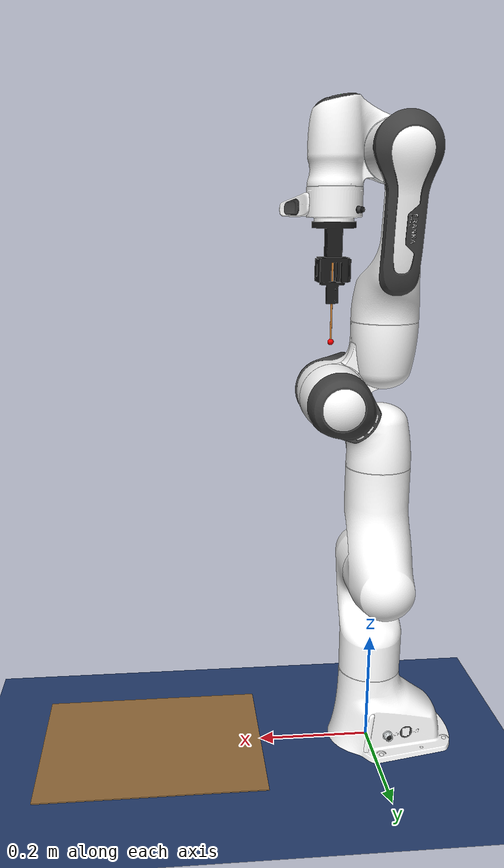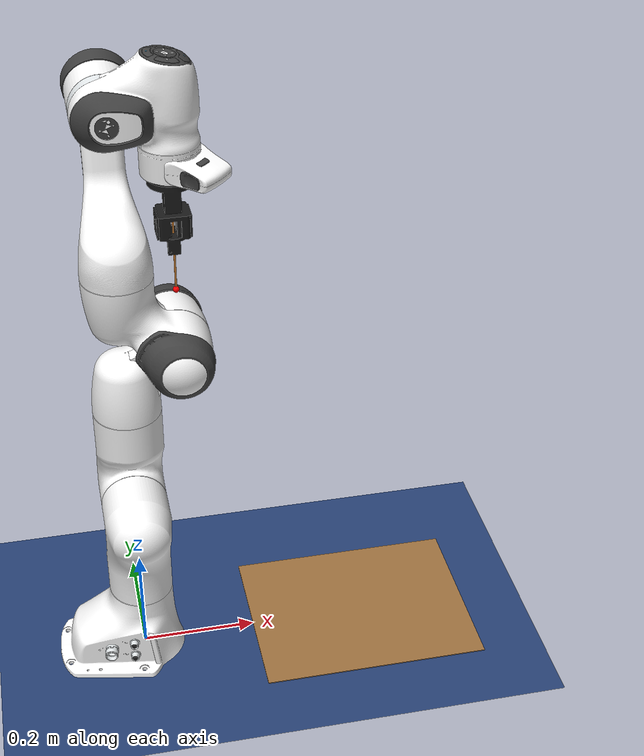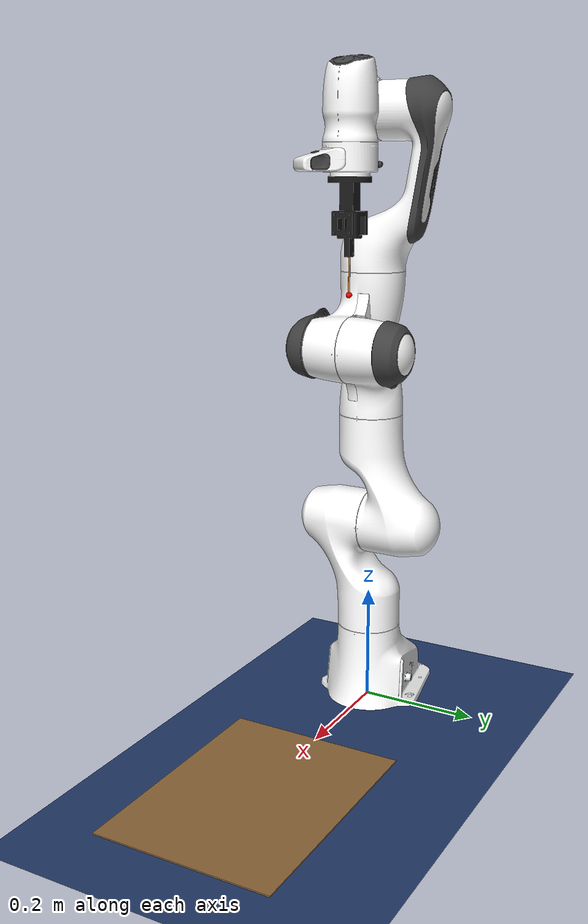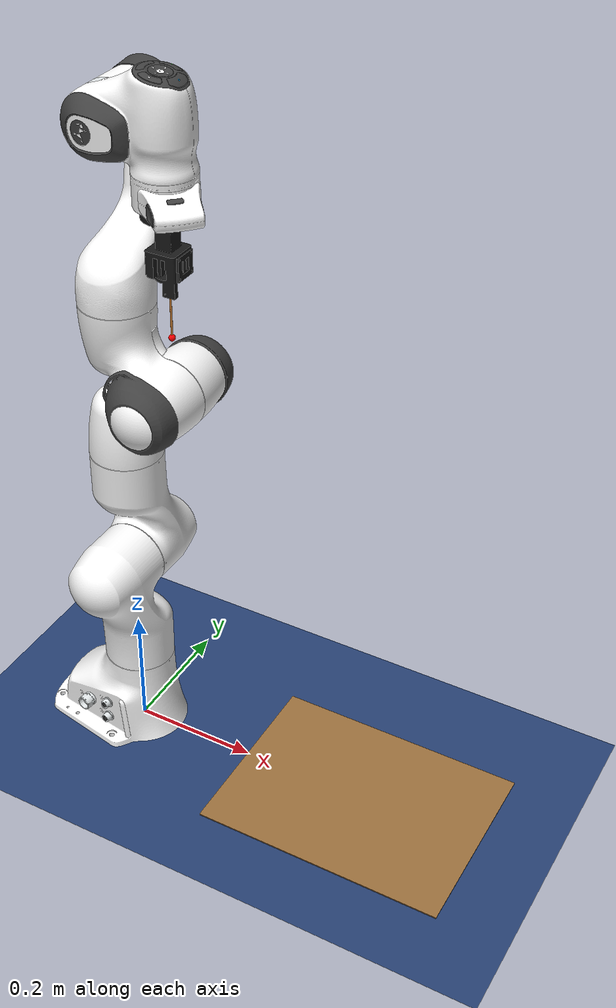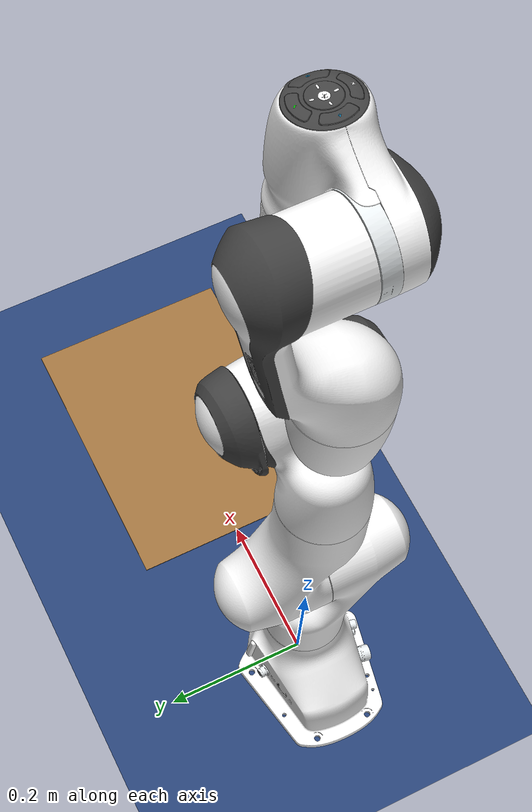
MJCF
<mujoco model="panda">
  <compiler angle="radian"
            meshdir="assets"
            autolimits="true"/>

  <option integrator="implicitfast"/>

  <default>
    <default class="panda">
      <material specular="0.5" shininess="0.25"/>
      <joint armature="0.1" damping="1" axis="0 0 1" range="-2.8973 2.8973"/>
      <!-- ctrlrange now covers torque range [Nm] instead of joint angle range [rad] -->
      <general dyntype="none" biastype="affine" ctrlrange="-87 87" forcerange="-87 87"/>
      <default class="finger">
        <joint axis="0 1 0" type="slide" range="0 0.04"/>
      </default>

      <default class="visual">
        <geom type="mesh" contype="0" conaffinity="0" group="2"/>
      </default>
      <default class="collision">
        <geom type="mesh" group="3"/>
        <default class="fingertip_pad_collision_1">
          <geom type="box" size="0.0146 0.0069 0.0137" pos="0 0.0103 0.1080"/>
        </default>
        <default class="fingertip_pad_collision_2">
          <geom type="box" size="0.0051 0.0034 0.0051" pos="0.0094 0.0034 0.1200"/>
        </default>
        <default class="fingertip_pad_collision_3">
          <geom type="box" size="0.0051 0.0034 0.0051" pos="-0.0094 0.0034 0.1200"/>
        </default>
        <default class="fingertip_pad_collision_4">
          <geom type="box" size="0.0051 0.0034 0.0051" pos="0.0094 0.0034 0.0994"/>
        </default>
        <default class="fingertip_pad_collision_5">
          <geom type="box" size="0.0051 0.0034 0.0051" pos="-0.0094 0.0034 0.0994"/>
        </default>
      </default>
    </default>
  </default>

  <asset>
    <texture name="grid" type="2d" builtin="checker" rgb1=".1 .2 .3" rgb2=".2 .3 .4" width="300" height="300" mark="edge" markrgb=".2 .3 .5"/>

    <texture name="skybox" type="skybox" builtin="gradient" rgb1=".3 .5 .7" rgb2=".1 .2 .3" width="512" height="512"/>

    <texture name="checkerboard" type="2d" builtin="checker" rgb1=".2 .3 .5" rgb2=".1 .2 .4" width="512" height="512" mark="edge" markrgb=".3 .4 .6"/>

    <material name="floor_mat" texture="checkerboard" texrepeat="1 1" texuniform="true" specular=".3" shininess=".5"/>

    <material name="grid" texture="grid" texrepeat="1 1" texuniform="true"/>
    <material class="panda" name="white" rgba="1 1 1 1"/>
    <material class="panda" name="off_white" rgba="0.901961 0.921569 0.929412 1"/>
    <material class="panda" name="black" rgba="0.25 0.25 0.25 1"/>
    <material class="panda" name="green" rgba="0 1 0 1"/>
    <material class="panda" name="light_blue" rgba="0.039216 0.541176 0.780392 1"/>
    <material name="sensor_orange" rgba="1.0 0.45 0.0 1"/>

    <!-- Collision meshes -->
    <mesh name="link0_c" file="link0.stl"/>
    <mesh name="link1_c" file="link1.stl"/>
    <mesh name="link2_c" file="link2.stl"/>
    <mesh name="link3_c" file="link3.stl"/>
    <mesh name="link4_c" file="link4.stl"/>
    <mesh name="link5_c0" file="link5_collision_0.obj"/>
    <mesh name="link5_c1" file="link5_collision_1.obj"/>
    <mesh name="link5_c2" file="link5_collision_2.obj"/>
    <mesh name="link6_c" file="link6.stl"/>
    <mesh name="link7_c" file="link7.stl"/>
    <mesh name="hand_c" file="hand.stl"/>

    <!-- Visual meshes -->
    <mesh file="link0_0.obj"/>
    <mesh file="link0_1.obj"/>
    <mesh file="link0_2.obj"/>
    <mesh file="link0_3.obj"/>
    <mesh file="link0_4.obj"/>
    <mesh file="link0_5.obj"/>
    <mesh file="link0_7.obj"/>
    <mesh file="link0_8.obj"/>
    <mesh file="link0_9.obj"/>
    <mesh file="link0_10.obj"/>
    <mesh file="link0_11.obj"/>
    <mesh file="link1.obj"/>
    <mesh file="link2.obj"/>
    <mesh file="link3_0.obj"/>
    <mesh file="link3_1.obj"/>
    <mesh file="link3_2.obj"/>
    <mesh file="link3_3.obj"/>
    <mesh file="link4_0.obj"/>
    <mesh file="link4_1.obj"/>
    <mesh file="link4_2.obj"/>
    <mesh file="link4_3.obj"/>
    <mesh file="link5_0.obj"/>
    <mesh file="link5_1.obj"/>
    <mesh file="link5_2.obj"/>
    <mesh file="link6_0.obj"/>
    <mesh file="link6_1.obj"/>
    <mesh file="link6_2.obj"/>
    <mesh file="link6_3.obj"/>
    <mesh file="link6_4.obj"/>
    <mesh file="link6_5.obj"/>
    <mesh file="link6_6.obj"/>
    <mesh file="link6_7.obj"/>
    <mesh file="link6_8.obj"/>
    <mesh file="link6_9.obj"/>
    <mesh file="link6_10.obj"/>
    <mesh file="link6_11.obj"/>
    <mesh file="link6_12.obj"/>
    <mesh file="link6_13.obj"/>
    <mesh file="link6_14.obj"/>
    <mesh file="link6_15.obj"/>
    <mesh file="link6_16.obj"/>
    <mesh file="link7_0.obj"/>
    <mesh file="link7_1.obj"/>
    <mesh file="link7_2.obj"/>
    <mesh file="link7_3.obj"/>
    <mesh file="link7_4.obj"/>
    <mesh file="link7_5.obj"/>
    <mesh file="link7_6.obj"/>
    <mesh file="link7_7.obj"/>
    <mesh file="hand_0.obj"/>
    <mesh file="hand_1.obj"/>
    <mesh file="hand_2.obj"/>
    <mesh file="hand_3.obj"/>
    <mesh file="hand_4.obj"/>
    <mesh file="finger_0.obj"/>
    <mesh name="finger_0_new" file="gripper_new_aligned.obj"/>
    <mesh name="finger_0_0405" file="finger_0_0405_aligned.obj"/>
    <mesh file="finger_1.obj"/>
    <mesh name="ft_sensor_mesh" file="ft_sensor.STL"/>
    <!-- Stick mesh -->
    <mesh name="stick_mesh" file="stick_aligned.obj"/>
    <mesh name="tool_mesh" file="Tool.STL"/>
  </asset>

  <worldbody>
    <light name="top" pos="0 0 2" mode="trackcom"/>
    <light directional="true" diffuse=".8 .8 .8" specular=".2 .2 .2" pos="0 0 5" dir="0 0 -1"/>
    <geom name="floor" type="plane" size="5 5 .1" material="floor_mat" pos="0 0 0"/>
    <!-- Sandpaper P120: body at x=0.4 so geoms cover world x≈[0.2,0.6], y=[-0.15,0.15]
         Top surface at z=0.002 matches z_pre_contact=0.002 in config/default.yaml -->
    <body name="sandpaper_p120" pos="0.4 0.0 0.0">
      <geom name="sandpaper_surface" type="box" size="0.20 0.15 0.001" pos="0 0 0.001"
            friction="2.6 0.04 0.002" rgba="0.61 0.44 0.24 1" contype="1" conaffinity="1"/>
    </body>
    <body name="link0" childclass="panda">
      <inertial mass="0.629769" pos="-0.041018 -0.00014 0.049974"
        fullinertia="0.00315 0.00388 0.004285 8.2904e-7 0.00015 8.2299e-6"/>
      <geom mesh="link0_0" material="off_white" class="visual"/>
      <geom mesh="link0_1" material="black" class="visual"/>
      <geom mesh="link0_2" material="off_white" class="visual"/>
      <geom mesh="link0_3" material="black" class="visual"/>
      <geom mesh="link0_4" material="off_white" class="visual"/>
      <geom mesh="link0_5" material="black" class="visual"/>
      <geom mesh="link0_7" material="white" class="visual"/>
      <geom mesh="link0_8" material="white" class="visual"/>
      <geom mesh="link0_9" material="black" class="visual"/>
      <geom mesh="link0_10" material="off_white" class="visual"/>
      <geom mesh="link0_11" material="white" class="visual"/>
      <geom mesh="link0_c" class="collision"/>
      <body name="link1" pos="0 0 0.333">
        <inertial mass="4.970684" pos="0.003875 0.002081 -0.04762"
          fullinertia="0.70337 0.70661 0.0091170 -0.00013900 0.0067720 0.019169"/>
        <joint name="joint1"/>
        <geom material="white" mesh="link1" class="visual"/>
        <geom mesh="link1_c" class="collision"/>
        <body name="link2" quat="1 -1 0 0">
          <inertial mass="0.646926" pos="-0.003141 -0.02872 0.003495"
            fullinertia="0.0079620 2.8110e-2 2.5995e-2 -3.925e-3 1.0254e-2 7.04e-4"/>
          <joint name="joint2" range="-1.7628 1.7628"/>
          <geom material="white" mesh="link2" class="visual"/>
          <geom mesh="link2_c" class="collision"/>
          <body name="link3" pos="0 -0.316 0" quat="1 1 0 0">
            <joint name="joint3"/>
            <inertial mass="3.228604" pos="2.7518e-2 3.9252e-2 -6.6502e-2"
              fullinertia="3.7242e-2 3.6155e-2 1.083e-2 -4.761e-3 -1.1396e-2 -1.2805e-2"/>
            <geom mesh="link3_0" material="white" class="visual"/>
            <geom mesh="link3_1" material="white" class="visual"/>
            <geom mesh="link3_2" material="white" class="visual"/>
            <geom mesh="link3_3" material="black" class="visual"/>
            <geom mesh="link3_c" class="collision"/>
            <body name="link4" pos="0.0825 0 0" quat="1 1 0 0">
              <inertial mass="3.587895" pos="-5.317e-2 1.04419e-1 2.7454e-2"
                fullinertia="2.5853e-2 1.9552e-2 2.8323e-2 7.796e-3 -1.332e-3 8.641e-3"/>
              <joint name="joint4" range="-3.0718 -0.0698"/>
              <geom mesh="link4_0" material="white" class="visual"/>
              <geom mesh="link4_1" material="white" class="visual"/>
              <geom mesh="link4_2" material="black" class="visual"/>
              <geom mesh="link4_3" material="white" class="visual"/>
              <geom mesh="link4_c" class="collision"/>
              <body name="link5" pos="-0.0825 0.384 0" quat="1 -1 0 0">
                <inertial mass="1.225946" pos="-1.1953e-2 4.1065e-2 -3.8437e-2"
                  fullinertia="3.5549e-2 2.9474e-2 8.627e-3 -2.117e-3 -4.037e-3 2.29e-4"/>
                <joint name="joint5"/>
                <geom mesh="link5_0" material="black" class="visual"/>
                <geom mesh="link5_1" material="white" class="visual"/>
                <geom mesh="link5_2" material="white" class="visual"/>
                <geom mesh="link5_c0" class="collision"/>
                <geom mesh="link5_c1" class="collision"/>
                <geom mesh="link5_c2" class="collision"/>
                <body name="link6" quat="1 1 0 0">
                  <inertial mass="1.666555" pos="6.0149e-2 -1.4117e-2 -1.0517e-2"
                    fullinertia="1.964e-3 4.354e-3 5.433e-3 1.09e-4 -1.158e-3 3.41e-4"/>
                  <joint name="joint6" range="-0.0175 3.7525"/>
                  <geom mesh="link6_0" material="off_white" class="visual"/>
                  <geom mesh="link6_1" material="white" class="visual"/>
                  <geom mesh="link6_2" material="black" class="visual"/>
                  <geom mesh="link6_3" material="white" class="visual"/>
                  <geom mesh="link6_4" material="white" class="visual"/>
                  <geom mesh="link6_5" material="white" class="visual"/>
                  <geom mesh="link6_6" material="white" class="visual"/>
                  <geom mesh="link6_7" material="light_blue" class="visual"/>
                  <geom mesh="link6_8" material="light_blue" class="visual"/>
                  <geom mesh="link6_9" material="black" class="visual"/>
                  <geom mesh="link6_10" material="black" class="visual"/>
                  <geom mesh="link6_11" material="white" class="visual"/>
                  <geom mesh="link6_12" material="green" class="visual"/>
                  <geom mesh="link6_13" material="white" class="visual"/>
                  <geom mesh="link6_14" material="black" class="visual"/>
                  <geom mesh="link6_15" material="black" class="visual"/>
                  <geom mesh="link6_16" material="white" class="visual"/>
                  <geom mesh="link6_c" class="collision"/>
                  <body name="link7" pos="0.088 0 0" quat="1 1 0 0">
                    <inertial mass="7.35522e-01" pos="1.0517e-2 -4.252e-3 6.1597e-2"
                      fullinertia="1.2516e-2 1.0027e-2 4.815e-3 -4.28e-4 -1.196e-3 -7.41e-4"/>
                    <joint name="joint7"/>
                    <geom mesh="link7_0" material="white" class="visual"/>
                    <geom mesh="link7_1" material="black" class="visual"/>
                    <geom mesh="link7_2" material="black" class="visual"/>
                    <geom mesh="link7_3" material="black" class="visual"/>
                    <geom mesh="link7_4" material="black" class="visual"/>
                    <geom mesh="link7_5" material="black" class="visual"/>
                    <geom mesh="link7_6" material="black" class="visual"/>
                    <geom mesh="link7_7" material="white" class="visual"/>
                    <geom mesh="link7_c" class="collision"/>
                    <body name="ft_frame" pos="0 0 0.107" quat="1 0 0 0">
                        <site name="ft_sensor_site" pos="0 0 0" size="0.005" rgba="1 0 0 1"/>
                        <!-- Calibrated tool payload (mass + CoM in the flange frame).
                             Regenerated by scripts/calibrate_payload_gravity_panda_flange.py. -->
                        <include file="flange_payload.xml"/>
                    <!-- tool z = -0.003 offsets the frame move 0.104 -> 0.107: tool stays put -->
                    <body name="tool" pos="0 0 -0.003" euler="0 0 1.5708">
                      <inertial mass="0" pos="0 0 -0.0205" diaginertia="9.881663e-5 9.881663e-5 1.482250e-4"/>

                      <!-- Visual mesh of sensor body -->
                      <geom type="mesh" mesh="tool_mesh"
                            contype="0" conaffinity="0"
                            rgba="0.1 0.1 0.1 0.9"/>

                      <body name="stick" pos="0 0 0" euler="3.14159 0 1.5708">
                          <!-- Mass and inertia lumped into hand body via FT-sensor calibration.
                               Geometry kept for visualisation + collision; mass set to ~0. -->
                          <inertial mass="1e-6"
                                     pos="0 0 -0.08674"
                                     diaginertia="1e-9 1e-9 1e-9"/>
                          <!-- 视觉：细长圆柱，覆盖整根棒（仅视觉，不参与碰撞） -->
                          <geom name="stick_visual" type="cylinder"
                                fromto="0 0 0.01526  0 0 -0.18874"
                                size="0.0015"
                                rgba="0.8 0.5 0.2 1"
                                contype="0" conaffinity="0" group="2"/>
                          <!-- 碰撞胶囊：半径不变 (0.006)，仅位于圆柱末端（接触端，约 2 cm） -->
                          <geom name="stick_collision" type="capsule"
                                fromto="0 0 -0.16874  0 0 -0.18874"
                                size="0.006"
                                group="3"/>
                          <!-- 末端追踪 site，用于控制器计算 -->
                          <site name="stick_tip" pos="0 0 -0.18874" euler="0 0 -0.785398" size="0.005" rgba="1 0 0 1"/>
                      </body>

                        </body>
                      </body>
                    </body>
                    </body>
                  </body>
                </body>
              </body>
            </body>
          </body>
        </body>
  </worldbody>

  <actuator>
    <general class="panda" name="actuator1" joint="joint1" gainprm="1" biastype="none" ctrlrange="-87 87"/>
    <general class="panda" name="actuator2" joint="joint2" gainprm="1" biastype="none" ctrlrange="-87 87"/>
    <general class="panda" name="actuator3" joint="joint3" gainprm="1" biastype="none" ctrlrange="-87 87"/>
    <general class="panda" name="actuator4" joint="joint4" gainprm="1" biastype="none" ctrlrange="-87 87"/>
    <general class="panda" name="actuator5" joint="joint5" gainprm="1" biastype="none" ctrlrange="-87 87"/>
    <general class="panda" name="actuator6" joint="joint6" gainprm="1" biastype="none" ctrlrange="-87 87"/>
    <general class="panda" name="actuator7" joint="joint7" gainprm="1" biastype="none" ctrlrange="-87 87"/>
  </actuator>

  <keyframe>
    <!-- ctrl for arm joints set to 0 [Nm] (torque control: controller takes over immediately)
         qpos unchanged from original home configuration -->
    <key name="home" qpos="0 0 0 -1.57079 0 1.57079 -0.7853" ctrl="0 0 0 0 0 0 0"/>
  </keyframe>

  <sensor>
    <force  name="ft_force"  site="ft_sensor_site"/>
    <torque name="ft_torque" site="ft_sensor_site"/>
  </sensor>

  <contact>
    <exclude body1="link0" body2="link1"/>
  </contact>
</mujoco>

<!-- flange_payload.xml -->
<mujocoinclude>
  <body name="flange_payload" pos="0 0 0">
    <inertial mass="0.206601" pos="0.004020 0.006197 0.046360"
              diaginertia="0.0011 0.00275 0.00187"/>
  </body>
</mujocoinclude>
